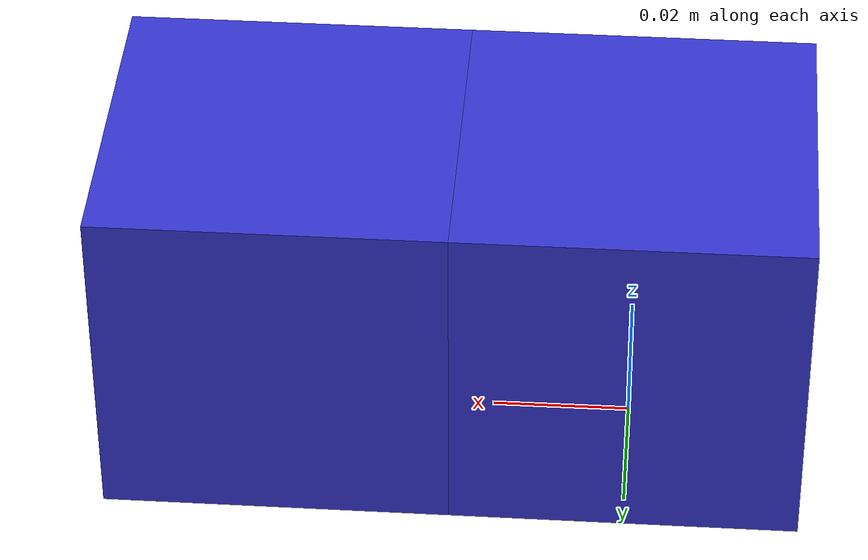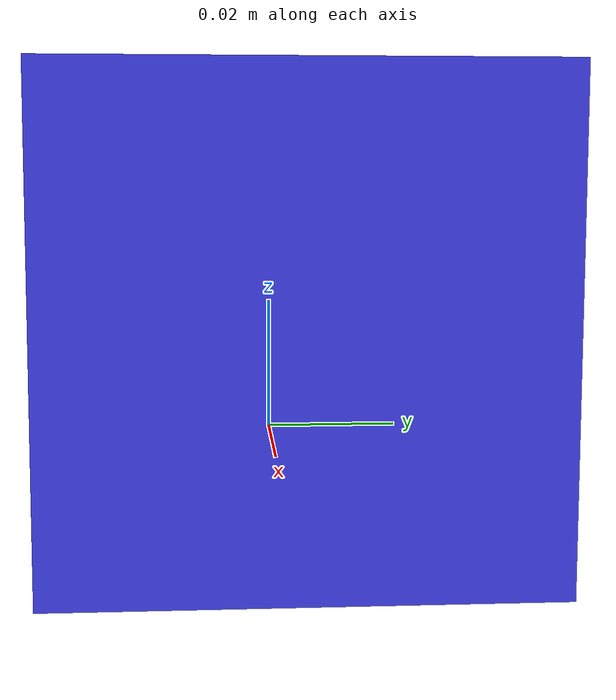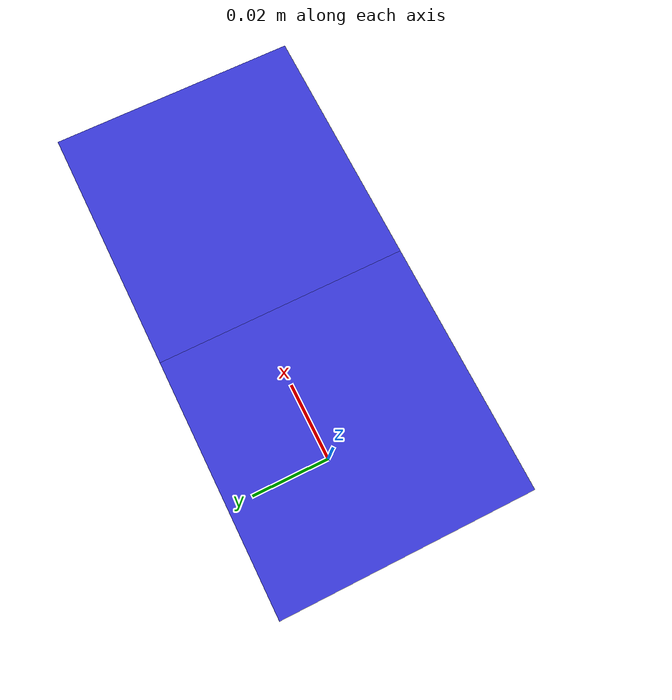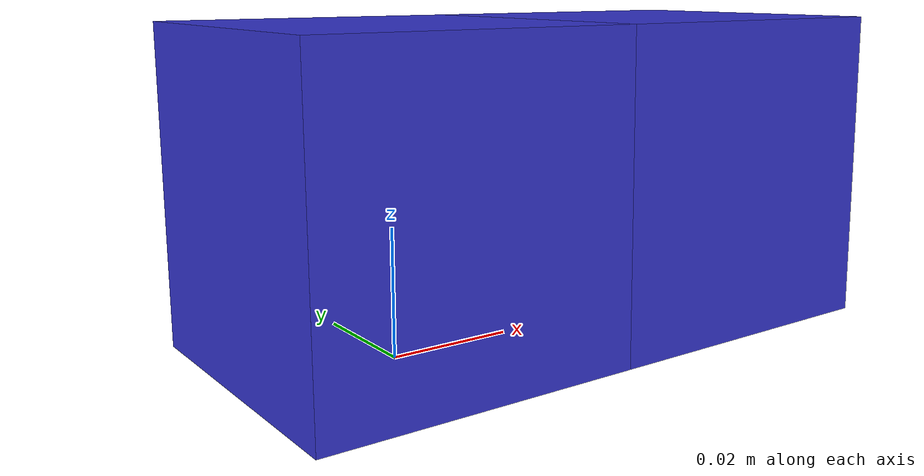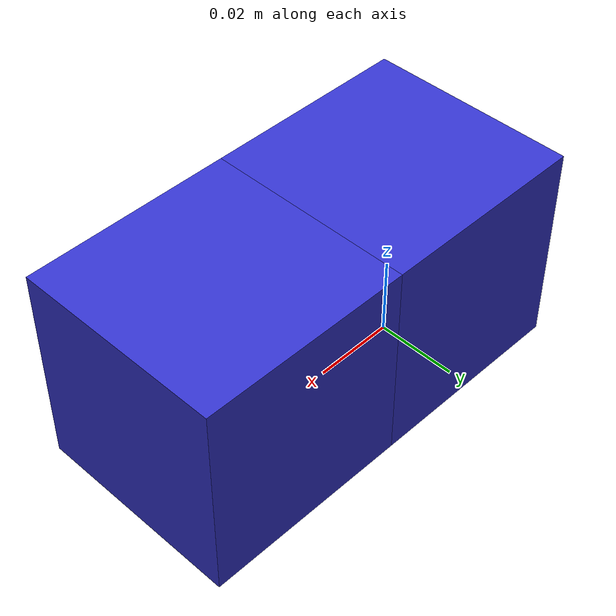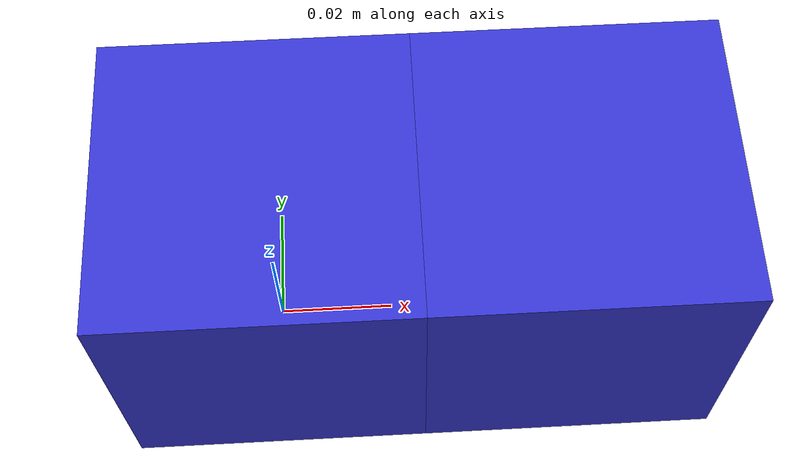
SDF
<?xml version="1.0"?>
<sdf version="1.6">
  <model name="snake_robot">
    <!-- Base Link -->
    <link name="base_link">
      <pose>0 0 0.025 0 0 0</pose>
      <inertial>
        <mass>0.2</mass>
        <inertia>
          <ixx>0.0001</ixx>
          <iyy>0.0001</iyy>
          <izz>0.0001</izz>
          <ixy>0</ixy>
          <ixz>0</ixz>
          <iyz>0</iyz>
        </inertia>
      </inertial>
      <collision name="collision">
        <geometry>
          <box>
            <size>0.05 0.05 0.05</size>
          </box>
        </geometry>
        <surface>
          <friction>
            <ode>
              <mu>0.5</mu>
              <mu2>0.5</mu2>
            </ode>
          </friction>
          <contact>
            <ode>
              <kp>1000000.0</kp>
              <kd>100.0</kd>
              <max_vel>0.01</max_vel>
              <min_depth>0.001</min_depth>
            </ode>
          </contact>
        </surface>
      </collision>
      <visual name="visual">
        <geometry>
          <box>
            <size>0.05 0.05 0.05</size>
          </box>
        </geometry>
        <material>
          <ambient>0.2 0.2 0.8 1</ambient>
          <diffuse>0.2 0.2 0.8 1</diffuse>
        </material>
      </visual>
    </link>

    <!-- Module 1 (showing just first module for brevity - repeat pattern for others) -->
    <link name="module_1">
      <pose>0.05 0 0.025 0 0 0</pose>
      <inertial>
        <mass>0.2</mass>
        <inertia>
          <ixx>0.0001</ixx>
          <iyy>0.0001</iyy>
          <izz>0.0001</izz>
          <ixy>0</ixy>
          <ixz>0</ixz>
          <iyz>0</iyz>
        </inertia>
      </inertial>
      <collision name="collision">
        <geometry>
          <box>
            <size>0.05 0.05 0.05</size>
          </box>
        </geometry>
        <surface>
          <friction>
            <ode>
              <mu>0.5</mu>
              <mu2>0.5</mu2>
            </ode>
          </friction>
          <contact>
            <ode>
              <kp>1000000.0</kp>
              <kd>100.0</kd>
              <max_vel>0.01</max_vel>
              <min_depth>0.001</min_depth>
            </ode>
          </contact>
        </surface>
      </collision>
      <visual name="visual">
        <geometry>
          <box>
            <size>0.05 0.05 0.05</size>
          </box>
        </geometry>
        <material>
          <ambient>0.2 0.2 0.8 1</ambient>
          <diffuse>0.2 0.2 0.8 1</diffuse>
        </material>
      </visual>
    </link>

    <joint name="joint_1" type="revolute">
      <parent>base_link</parent>
      <child>module_1</child>
      <pose>0.025 0 0 0 0 0</pose>
      <axis>
        <xyz>0 1 0</xyz>  <!-- Changed to Y-axis for lateral movement -->
        <limit>
          <lower>-0.7</lower>  <!-- Reduced joint limits -->
          <upper>0.7</upper>
          <effort>10</effort>  <!-- Increased effort limit -->
          <velocity>0.5</velocity>
        </limit>
        <dynamics>
          <damping>1.0</damping>  <!-- Increased damping -->
          <friction>0.5</friction>
          <spring_reference>0</spring_reference>
          <spring_stiffness>0.5</spring_stiffness>
        </dynamics>
      </axis>
      <physics>
        <ode>
          <cfm>0.001</cfm>
          <bounce>0.0</bounce>
          <max_force>1000.0</max_force>
        </ode>
      </physics>
    </joint>

    <!-- [Rest of modules follow same pattern...] -->

    <plugin name="snake_controller" filename="libsnake_controller.so">
      <frequency>0.5</frequency>  <!-- Reduced frequency -->
      <amplitude>0.3</amplitude>  <!-- Reduced amplitude -->
      <phase_offset>1.57</phase_offset>
      <joints>
        <joint>joint_1</joint>
        <joint>joint_2</joint>
        <joint>joint_3</joint>
        <joint>joint_4</joint>
        <joint>joint_5</joint>
        <joint>joint_6</joint>
      </joints>
    </plugin>
  </model>
</sdf>
